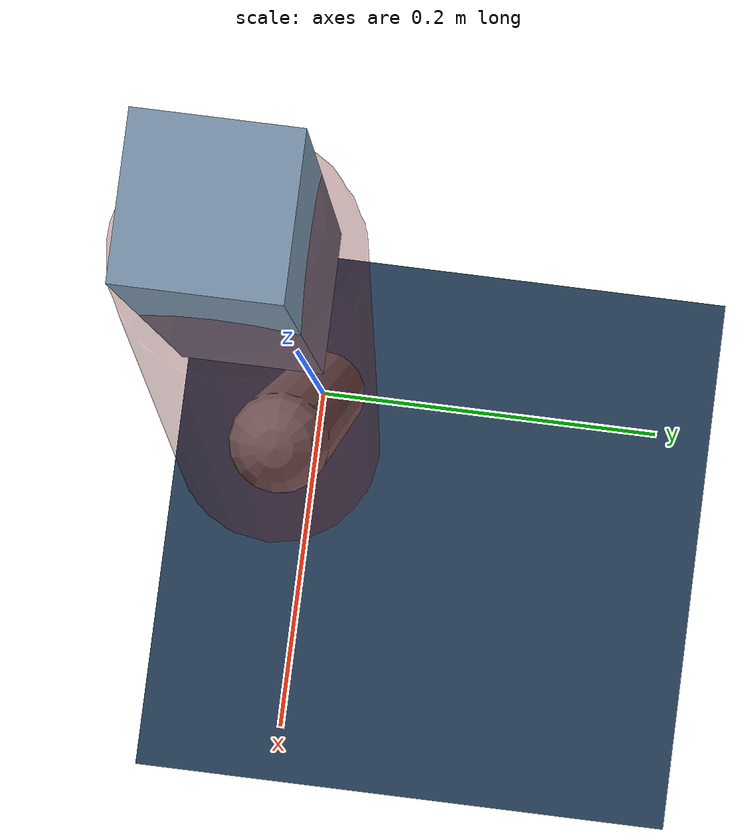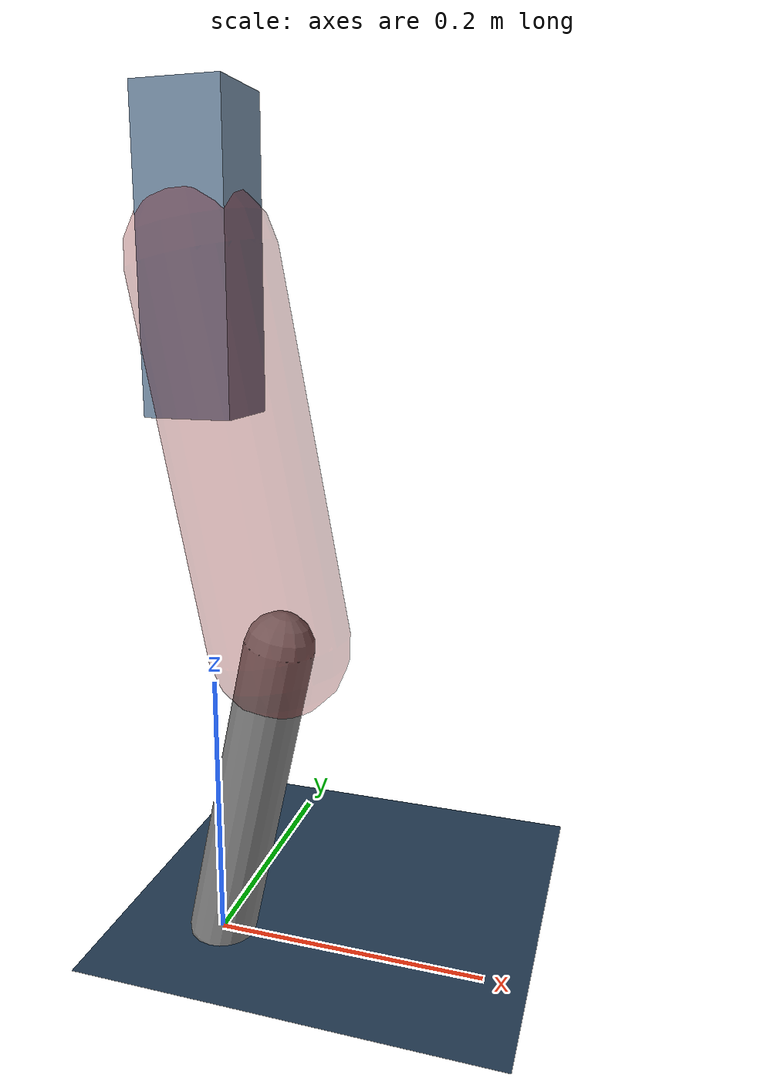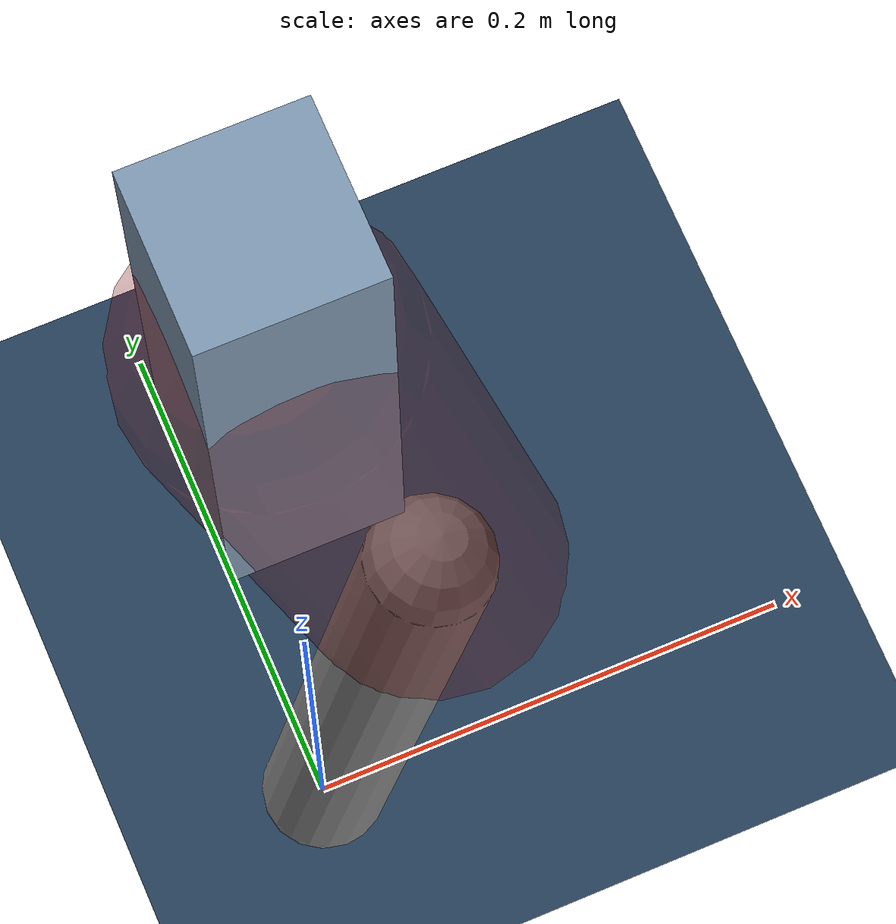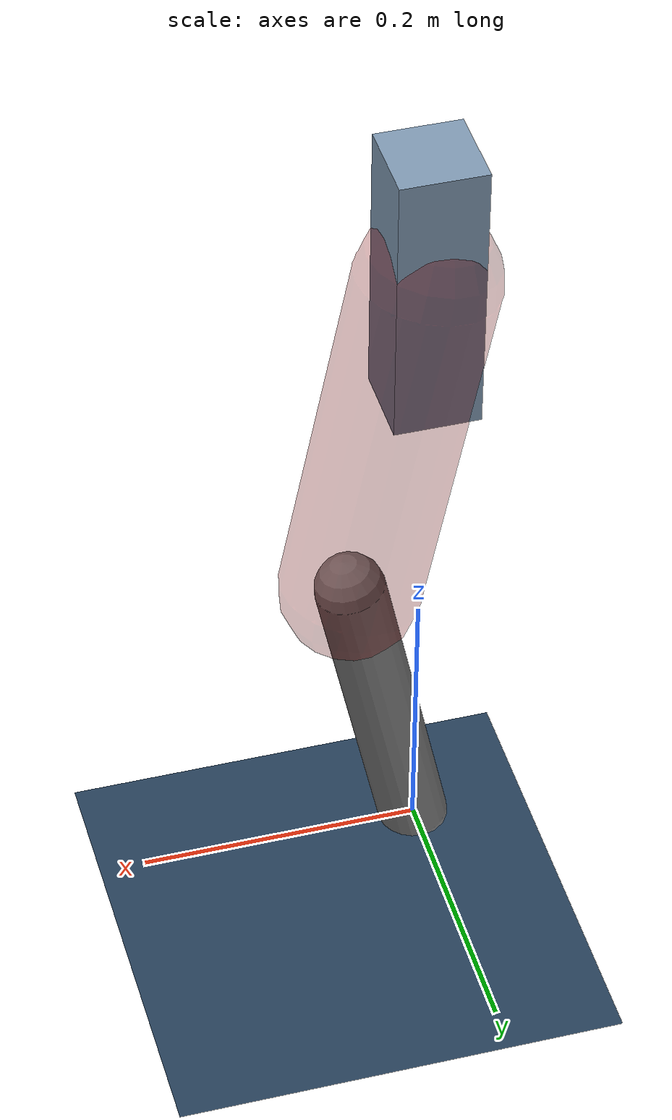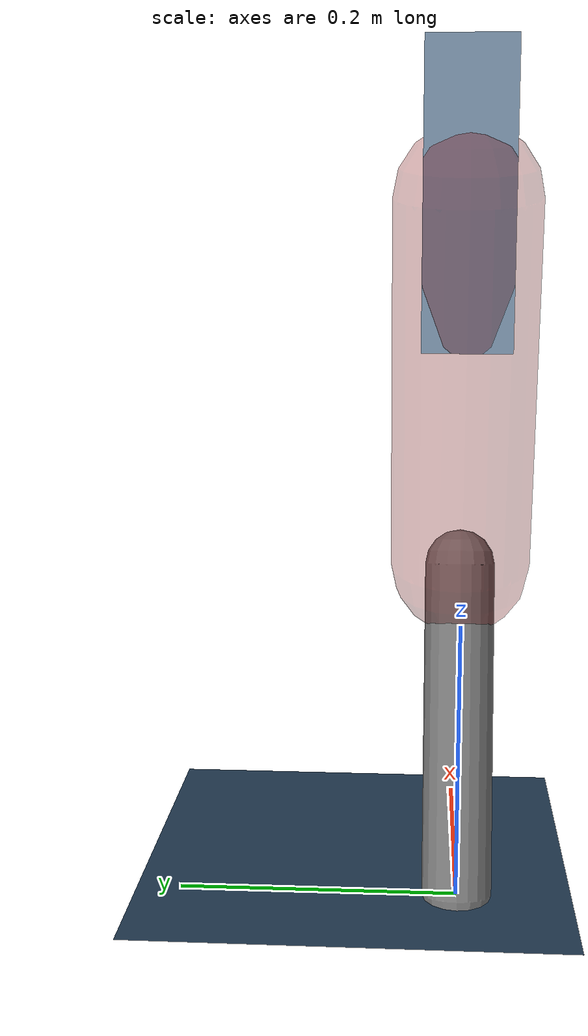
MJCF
<mujoco model="Hopper2D">
	<compiler inertiafromgeom="true" angle="radian" />
	<option timestep="0.001" integrator="implicit" cone="elliptic" solver="Newton" tolerance="1e-10" />

	<default>
		<geom contype="1" conaffinity="1" condim="3" friction="2 0.005 0.0001" solref="0.005 1" />
		<joint limited="true" damping="0.1" />
	</default>

	<asset>
		<texture name="skybox" type="skybox" builtin="gradient" rgb1=".4 .6 .8" rgb2="0 0 0" width="800" height="800" />
		<texture name="grid" type="2d" builtin="checker" rgb1=".1 .2 .3" rgb2=".2 .3 .4" width="300" height="300" mark="edge" markrgb=".2 .3 .4" />
		<material name="ground" texture="grid" texrepeat="1 1" texuniform="true" reflectance="0.1" />
		<material name="leg" rgba="0.5 0.6 0.7 1" />
	</asset>

	<worldbody>

		<geom name="floor" type="plane" size="5 5 0.25" material="ground" />

		<light directional="false" diffuse="0.8 0.8 0.8" specular="0.3 0.3 0.3" pos="0 0 2" dir="0 0 -1" />
		<light mode="targetbodycom" target="base" directional="false" diffuse="0.8 0.8 0.8" specular="0.3 0.3 0.3" pos="0 0 2" dir="0 0 -1" />

		<camera name="fixed" pos="0 -2 1" xyaxes="1 0 0 0 0 1" />
		<camera name="tracking" mode="trackcom" pos="0 -3 1" />

		<body name="root" pos="0 0 0.49103072464519504">
			<joint name="slide_x" type="slide" axis="1 0 0" range="-100 100" />
			<joint name="slide_z" type="slide" axis="0 0 1" range="0 10" />

			<body name="base" pos="0 0 0">
				<geom name="torso" type="box" size="0.03 0.03 0.1" mass="2.6639999999999997" material="leg" />

				<body name="link1" pos="0 0 0" euler="0 1.3804100964045896 0">
					<joint type="hinge" axis="0 -1 0" pos="0 0 0" name="hinge1" limited="true" range="-3.14 3.14" stiffness="0" damping="0.1" />
					<geom name="thigh" type="capsule" fromto="0 0 0 0.262834960536252 0 0" size="0.05" rgba="0.5 0 0 0.3" mass="0.8898543934478803" />

					<body name="link2" pos="0.262834960536252 0 0" euler="0 0.40074741517320267 0">
						<joint type="hinge" axis="0 -1 0" pos="0 0 0" name="hinge2" limited="true" range="-3.14 3.14" stiffness="0" damping="0.1" />
						<geom name="shank" type="capsule" fromto="0 0 0 0.238195764108943 0 0" size="0.025" mass="0.43275661128715437" />

					</body>
				</body>
			</body>
		</body>
	</worldbody>

	<actuator>
		<motor name="torque1" joint="hinge1" ctrlrange="-165.75045048639598 165.75045048639598" ctrllimited="true" gear="1" />
		<motor name="torque2" joint="hinge2" ctrlrange="-80.59619958866334 80.59619958866334" ctrllimited="true" gear="1" />
	</actuator>
</mujoco>
